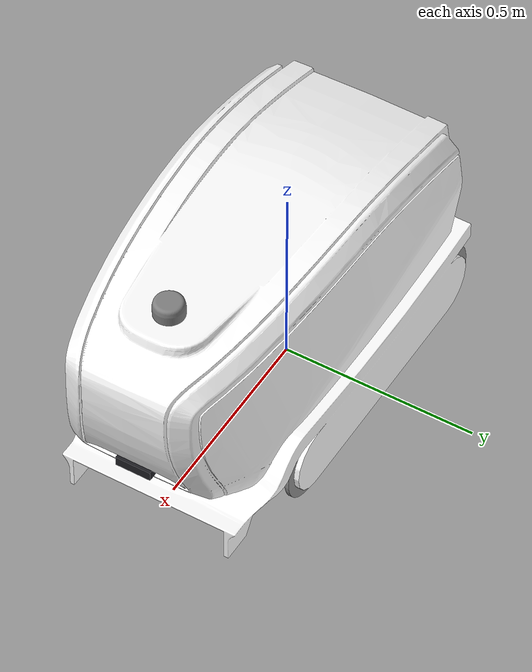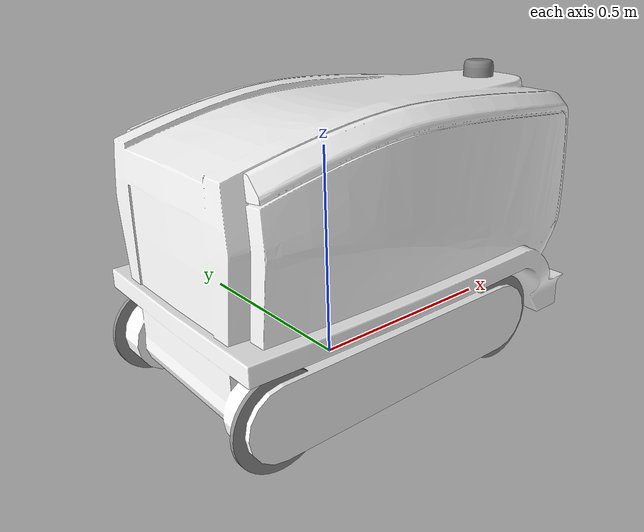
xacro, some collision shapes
<?xml version="1.0"?>
<robot name="asump0_robot" xmlns:xacro="http://www.ros.org/wiki/xacro">

  <xacro:arg name="camera_model" default="intel_d435i"/>

  <xacro:include filename="base_link.xacro"/>
  <xacro:include filename="lidar.xacro"/>
  <!--xacro:include filename="side_camera.xacro"/-->
  <!--xacro:include filename="ros2_control.xacro"/-->
  <xacro:include filename="imu.xacro"/>
  <xacro:include filename="gazebo_control.xacro"/>
  <xacro:include filename="depth_camera.xacro"/>
  <!--xacro:include filename="d415.xacro"/-->
  <xacro:property name="robot_name" value="asump0"/>

  <xacro:lidar
    parent_link="base_link"
    x="0.496510223719" y="0" z="0.596484004557"
    roll="0" pitch="0" yaw="-3.14"
  />

  <xacro:rlai_depth_camera
    parent="base_link"
    xyz="0.648 0 0.24"
    rpy="0 0 0"
    model="$(arg camera_model)"
  />

  <!--xacro:simple_d415_camera
    parent="base_link"
    xyz="0.648 0.0 0.24"
    rpy="0 0 0"
    name="depth_camera"/-->

  <xacro:imu_sensor
    name="imu"
    parent_link="base_link"
    x="0" y="0" z="0.3"
    roll="0" pitch="0" yaw="0"
    update_rate="100"
  />

  <!--xacro:ros2_control_rollers/-->

</robot>

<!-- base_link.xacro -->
<robot xmlns:xacro="http://www.ros.org/wiki/xacro">

  <!-- Включение файла с параметрами роликов -->
  <xacro:include filename="roller_params.xacro" />

  <link name="base_footprint"/>

  <!-- Базовое звено -->
  <link name="base_link">
    <inertial>
      <origin xyz="0.109332549621884 -3.99444698804471E-06 0.303288060337734" rpy="0 0 0"/>
      <mass value="7.5"/>
      <inertia ixx="13.4992891087176" ixy="0.000473313057343369" ixz="-1.40847406797442"
               iyy="29.2623362046841" iyz="0.00234656617180413" izz="27.4848319406113"/>
    </inertial>
    <visual>
      <origin xyz="0 0 0" rpy="0 0 0"/>
      <geometry>
        <mesh filename="file://$(find asump_description)/meshes/base_link.STL"/>
      </geometry>
      <material name=""><color rgba="1 1 1 1"/></material>
    </visual>
    <collision>
      <origin xyz="0 0 0" rpy="0 0 0"/>
      <geometry>
        <mesh filename="file://$(find asump_description)/meshes/base_link.STL"/>
      </geometry>
    </collision>
  </link>

  <joint name="base_joint" type="fixed">
    <origin xyz="0 0 0" rpy="0 0 0"/>
    <parent link="base_footprint"/>
    <child link="base_link"/>
    <axis xyz="0 0 0"/>
  </joint>

  <link name="balance_link">
    <inertial>
      <origin xyz="0 0 0" rpy="0 0 0"/>
      <mass value="3.2"/>
      <inertia ixx="13.4992891087176" ixy="0.000473313057343369" ixz="-1.40847406797442"
               iyy="29.2623362046841" iyz="0.00234656617180413" izz="27.4848319406113"/>
    </inertial>
  </link>

  <joint name="balance_joint" type="fixed">
    <origin xyz="0 0 0.25" rpy="0 0 0"/>
    <parent link="base_link"/>
    <child link="balance_link"/>
    <axis xyz="0 0 0"/>
  </joint>

  <!-- Траки -->

  <!-- Ролики -->
  <xacro:roller name="fl" x="0.30749" y="0.25132" z="0.079492" axis_x="0" axis_y="1" axis_z="0"/>
  <xacro:roller name="fr" x="0.30749" y="-0.25132" z="0.079492" axis_x="0" axis_y="1" axis_z="0"/>
  <xacro:roller name="rl" x="-0.30675" y="0.25132" z="0.079492" axis_x="0" axis_y="1" axis_z="0"/>
  <xacro:roller name="rr" x="-0.30675" y="-0.25132" z="0.079492" axis_x="0" axis_y="1" axis_z="0"/>

</robot>

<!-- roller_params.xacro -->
<robot xmlns:xacro="http://www.ros.org/wiki/xacro">

  <!-- Макрос для создания ролика -->
  <xacro:macro name="roller" params="name x y z axis_x axis_y axis_z">
    <link name="${name}_roller">
      <inertial>
        <origin xyz="0 -0.01 0" rpy="0 0 0"/>
        <mass value="1.2"/>
        <inertia ixx="0.00179016454216459" ixy="1.32679515530007E-36" ixz="1.04242882131926E-50"
                 iyy="0.00353589020904659" iyz="-3.27203986802643E-19" izz="0.00179016454216458"/>
      </inertial>
      <visual>
        <origin xyz="0 0 0" rpy="0 0 0"/>
        <geometry>
          <mesh filename="file://$(find asump_description)/meshes/${name}_roller.STL" scale="1 0.5 1"/>
        </geometry>
        <material name=""><color rgba="0.564705882352941 0.564705882352941 0.564705882352941 1"/></material>
      </visual>
      <collision>
        <origin xyz="0 0 0" rpy="0 0 0"/>
        <geometry>
          <mesh filename="file://$(find asump_description)/meshes/${name}_roller.STL" scale="1 0.5 1"/>
        </geometry>
      </collision>
    </link>

    <joint name="${name}_joint" type="continuous">
      <origin xyz="${x} ${y} ${z}" rpy="0 0 0"/>
      <parent link="base_link"/>
      <child link="${name}_roller"/>
      <axis xyz="${axis_x} ${axis_y} ${axis_z}"/>
      <limit effort="25000" velocity="100"/>
      <dynamics friction="0.2"/>
    </joint>

    <gazebo reference="${name}_roller">

      <!-- Настройки трения с поверхностью -->
      <mu1>0.4</mu1>        <!-- Коэффициент трения в продольном направлении -->
      <mu2>0.1</mu2>        <!-- Коэффициент трения в поперечном направлении -->
      <kp>1e5</kp>          <!-- Коэффициент жесткости контакта -->
      <kd>1e3</kd>          <!-- Коэффициент демпфирования контакта -->

    </gazebo>
  </xacro:macro>
</robot>

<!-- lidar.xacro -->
<robot xmlns:xacro="http://www.ros.org/wiki/xacro">

  <xacro:macro name="lidar" params="parent_link x y z roll pitch yaw">
    <link name="laser">
      <inertial>
        <origin xyz="-0.391109515510156 1.97239805683526E-07 -0.302515275293891" rpy="0 0 0"/>
        <mass value="0.25"/>
        <inertia ixx="14.721208377301" ixy="0.000729274097054414" ixz="-1.7138458385476"
                 iyy="31.0730345912135" iyz="0.00228580331928823" izz="29.139821759891"/>
      </inertial>
      <visual>
        <origin xyz="0 0 0" rpy="0 0 0"/>
        <geometry>
          <mesh filename="file://$(find asump_description)/meshes/lidar_link.STL"/>
        </geometry>
        <material name=""><color rgba="0.5 0.5 0.5 1"/></material>
      </visual>
      <collision>
        <origin xyz="0 0 0" rpy="0 0 0"/>
        <geometry>
          <mesh filename="file://$(find asump_description)/meshes/lidar_link.STL"/>
        </geometry>
      </collision>
    </link>

    <joint name="lidar_joint" type="fixed">
      <origin xyz="${x} ${y} ${z}" rpy="${roll} ${pitch} ${yaw}"/>
      <parent link="${parent_link}"/>
      <child link="laser"/>
      <axis xyz="0 0 0"/>
    </joint>

    <link name="lidar_ray_link"/>

    <joint name="lidar_ray_joint" type="fixed">
      <origin xyz="0 0 0.02" rpy="0 0 0"/>
      <parent link="laser"/>
      <child link="lidar_ray_link"/>
      <axis xyz="0 0 0"/>
    </joint>

    <gazebo reference="lidar_link">
      <material>Gazebo/Grey</material>
    </gazebo>

    <gazebo reference="lidar_ray_link">
      <sensor name="lidar_sensor" type="gpu_lidar">
        <pose>0 0 0 0 0 0</pose>
        <gz_frame_id>asump0/base_footprint/lidar_sensor</gz_frame_id>
        <visualize>false</visualize>
        <update_rate>10</update_rate>
        <lidar>
          <scan>
            <horizontal>
              <samples>1600</samples>
              <resolution>1</resolution>
              <min_angle>-3.14159</min_angle>
              <max_angle>3.14159</max_angle>
            </horizontal>
          </scan>
          <range>
            <min>0.15</min>
            <max>25.0</max>
            <resolution>0.01</resolution>
          </range>
          <noise>
            <type>gaussian</type>
            <mean>0.0</mean>
            <stddev>0.01</stddev>
          </noise>
        </lidar>
        <topic>/rplidar/scan</topic>
      </sensor>
    </gazebo>
  </xacro:macro>

  <link name="asump0/base_footprint/lidar_sensor"/>

  <joint name="lidar_ray_sensor_joint" type="fixed">
    <origin xyz="0 0 0.02" rpy="0 0 0"/>
    <parent link="lidar_ray_link"/>
    <child link="asump0/base_footprint/lidar_sensor"/>
    <axis xyz="0 0 0"/>
  </joint>

</robot>

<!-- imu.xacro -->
<robot xmlns:xacro="http://www.ros.org/wiki/xacro" name="imu_sensor">

  <xacro:macro name="imu_sensor"
               params="name parent_link
                       x:=0 y:=0 z:=0
                       roll:=0 pitch:=0 yaw:=0
                       noise:=medium
                       update_rate:=200">

    <joint name="${name}_joint" type="fixed">
      <parent link="${parent_link}"/>
      <child link="${name}_link"/>
      <origin xyz="${x} ${y} ${z}" rpy="${roll} ${pitch} ${yaw}"/>
    </joint>

    <link name="${name}_link">
      <visual>
        <origin xyz="0 0 0" rpy="0 0 0"/>
        <geometry>
          <box size="0.05 0.05 0.03"/>
        </geometry>
        <material name="Grey">
          <color rgba="0.5 0.5 0.5 1.0"/>
        </material>
      </visual>

      <collision>
        <origin xyz="0 0 0" rpy="0 0 0"/>
        <geometry>
          <box size="0.05 0.05 0.03"/>
        </geometry>
      </collision>

      <inertial>
        <mass value="0.01"/>
        <origin xyz="0 0 0" rpy="0 0 0"/>
        <inertia ixx="1e-5" ixy="0" ixz="0" iyy="1e-5" iyz="0" izz="1e-5"/>
      </inertial>
    </link>

    <gazebo reference="${name}_link">
      <sensor name="${name}" type="imu">
        <always_on>true</always_on>
        <update_rate>${update_rate}</update_rate>
        <imu>
          <angular_velocity>
            <x><noise type="gaussian"><stddev>0.001</stddev></noise></x>
            <y><noise type="gaussian"><stddev>0.001</stddev></noise></y>
            <z><noise type="gaussian"><stddev>0.001</stddev></noise></z>
          </angular_velocity>
          <linear_acceleration>
            <x><noise type="gaussian"><stddev>0.01</stddev></noise></x>
            <y><noise type="gaussian"><stddev>0.01</stddev></noise></y>
            <z><noise type="gaussian"><stddev>0.01</stddev></noise></z>
          </linear_acceleration>
        </imu>
        <topic>imu/data</topic>
      </sensor>
    </gazebo>
  </xacro:macro>
</robot>

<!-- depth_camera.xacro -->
<robot xmlns:xacro="http://www.ros.org/wiki/xacro">
  <xacro:macro name="rlai_depth_camera" params="parent xyz rpy model">
    <link name="depth_camera_link">
      <visual>
        <origin xyz="0 0 0" rpy="${-pi/2} 0 0"/>
        <geometry>
          <mesh filename="package://realsense2_description/meshes/d415.stl"/>
        </geometry>
        <material name="camera_dark_gray">
          <color rgba="0.12 0.12 0.14 1.0"/>
        </material>
      </visual>
      <collision>
        <origin xyz="0 0 0" rpy="0 0 0"/>
        <geometry>
          <box size="0.025 0.090 0.025"/>
        </geometry>
      </collision>
    </link>

    <joint name="depth_camera_joint" type="fixed">
      <parent link="${parent}"/>
      <child link="depth_camera_link"/>
      <origin xyz="${xyz}" rpy="${rpy}"/>
    </joint>

    <!-- RGB optical frame (REP-103: z-forward, x-right, y-down) -->
    <link name="depth_camera_rgb_optical_frame"/>

    <joint name="depth_camera_rgb_optical_joint" type="fixed">
      <parent link="depth_camera_link"/>
      <child link="depth_camera_rgb_optical_frame"/>
      <!-- Rotate from body (x-forward) to optical (z-forward): pitch -90°, roll -90° -->
      <origin xyz="0 0 0" rpy="${-pi/2} 0 ${-pi/2}"/>
    </joint>

    <!-- Depth optical frame -->
    <link name="depth_camera_depth_optical_frame"/>

    <joint name="depth_camera_depth_optical_joint" type="fixed">
      <parent link="depth_camera_link"/>
      <child link="depth_camera_depth_optical_frame"/>
      <origin xyz="0 0 0" rpy="${-pi/2} 0 ${-pi/2}"/>
    </joint>

    <gazebo reference="depth_camera_link">
      <visual>
        <material>
          <ambient>0.15 0.16 0.18 1.0</ambient>
          <diffuse>0.22 0.23 0.26 1.0</diffuse>
          <specular>0.5 0.5 0.55 1.0</specular>
        </material>
      </visual>
      <sensor name="depth_camera" type="rgbd_camera">
        <always_on>true</always_on>
        <update_rate>30</update_rate>
        <topic>/depth_camera/depth</topic>
        <gz_frame_id>depth_camera_link</gz_frame_id>
        <camera name="depth_camera">
          <horizontal_fov>1.5184</horizontal_fov>
          <image>
            <width>640</width>
            <height>480</height>
            <format>R_FLOAT32</format>
          </image>
          <clip>
            <near>0.1</near>
            <far>10.0</far>
          </clip>
          <noise>
            <type>gaussian</type>
            <mean>0.0</mean>
            <stddev>0.002</stddev>
          </noise>
        </camera>
      </sensor>
    </gazebo>

  </xacro:macro>
</robot>
